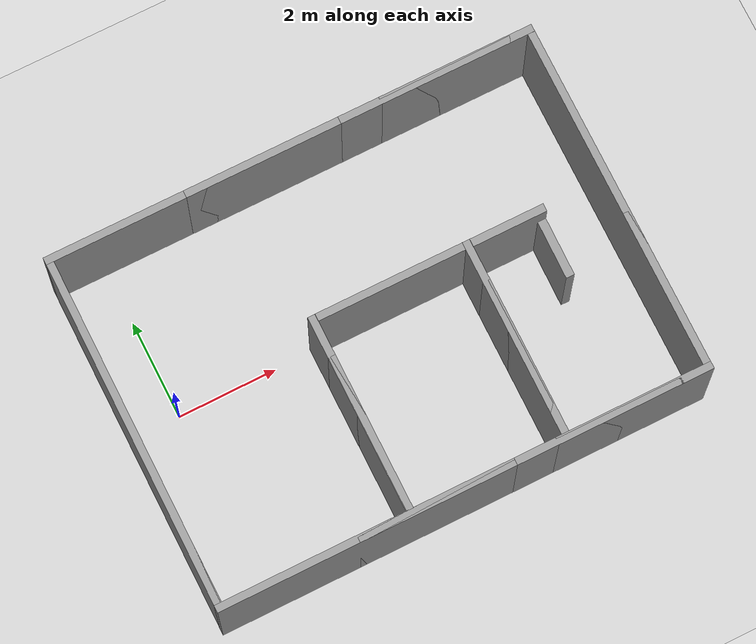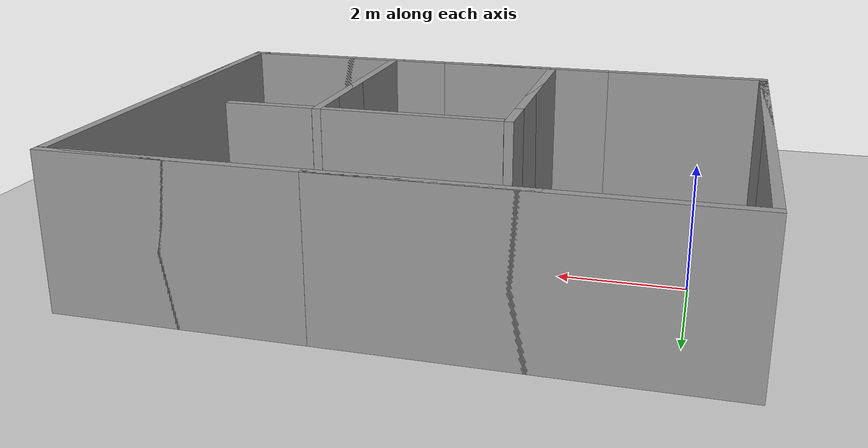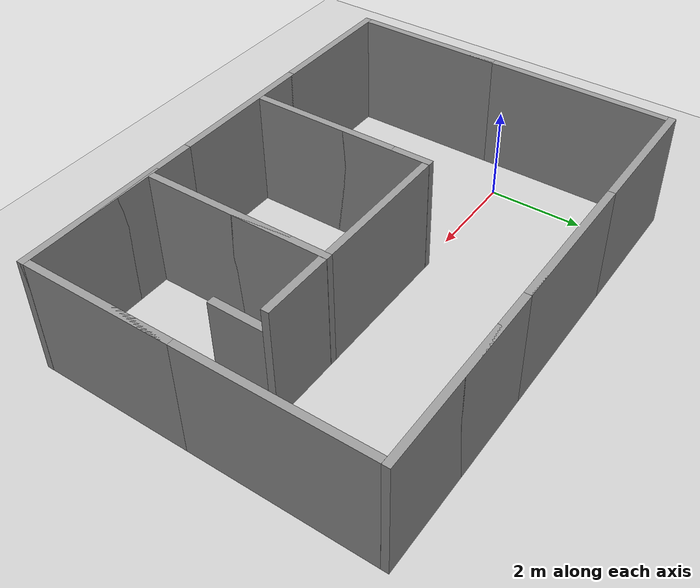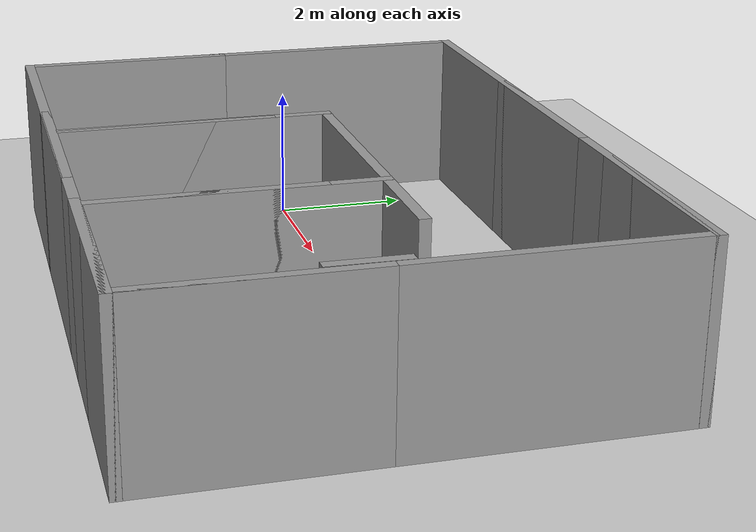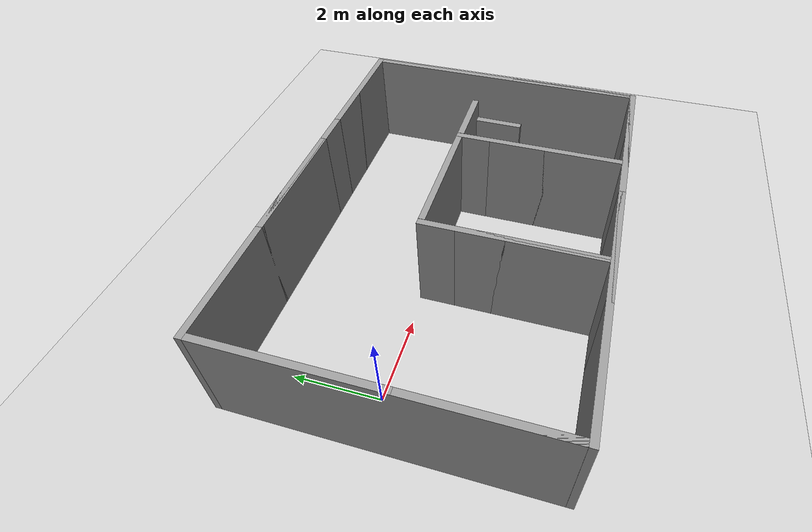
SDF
<sdf version="1.6">
 <world name="default">
  <light name="sun" type="directional">
   <pose>0 0 10 0 -0 0</pose>
   <diffuse>0.8 0.8 0.8 1</diffuse>
   <specular>0.2 0.2 0.2 1</specular>
   <attenuation>
    <range>1000</range>
    <constant>0.9</constant>
    <linear>0.01</linear>
    <quadratic>0.001</quadratic>
   </attenuation>
   <direction>-0.5 0.1 -0.9</direction>
  </light>
  <model name="ground_plane">
   <static>1</static>
   <link name="link">
    <collision name="collision">
     <geometry><plane><normal>0 0 1</normal><size>100 100</size></plane></geometry>
     <surface>
      <contact><collide_bitmask>65535</collide_bitmask></contact>
      <friction><ode><mu>100</mu><mu2>50</mu2></ode></friction>
     </surface>
    </collision>
    <visual name="visual">
     <cast_shadows>0</cast_shadows>
     <geometry><plane><normal>0 0 1</normal><size>100 100</size></plane></geometry>
     <material>
      <script><uri>file://media/materials/scripts/gazebo.material</uri><name>Gazebo/Grey</name></script>
     </material>
    </visual>
   </link>
  </model>
  <gravity>0 0 -9.8</gravity>
  <magnetic_field>6e-06 2.3e-05 -4.2e-05</magnetic_field>
  <atmosphere type="adiabatic"/>
  <physics name="default_physics" default="0" type="ode">
   <max_step_size>0.001</max_step_size>
   <real_time_factor>1</real_time_factor>
   <real_time_update_rate>1000</real_time_update_rate>
  </physics>
  <scene><ambient>0.4 0.4 0.4 1</ambient><background>0.7 0.7 0.7 1</background><shadows>1</shadows></scene>
  <audio><device>default</device></audio>
  <spherical_coordinates>
   <surface_model>EARTH_WGS84</surface_model>
   <latitude_deg>0</latitude_deg>
   <longitude_deg>0</longitude_deg>
   <elevation>0</elevation>
   <heading_deg>0</heading_deg>
  </spherical_coordinates>
  <model name="wall_6m">
   <pose>1.93944 3.15158 0 0 -0 0</pose>
   <link name="Wall_0">
    <collision name="Wall_0_Collision">
     <geometry><box><size>3.16 0.15 2.5</size></box></geometry>
     <pose>0 0 1.25 0 -0 0</pose>
    </collision>
    <visual name="Wall_0_Visual">
     <pose>0 0 1.25 0 -0 0</pose>
     <geometry><box><size>3.16 0.15 2.5</size></box></geometry>
     <material>
      <script><uri>file://media/materials/scripts/gazebo.material</uri><name>Gazebo/Grey</name></script>
      <ambient>1 1 1 1</ambient>
     </material>
     <meta><layer>0</layer></meta>
    </visual>
    <pose>1.42 0 0 0 -0 0</pose>
   </link>
   <link name="Wall_1">
    <collision name="Wall_1_Collision">
     <geometry><box><size>6 0.15 2.5</size></box></geometry>
     <pose>0 0 1.25 0 -0 0</pose>
    </collision>
    <visual name="Wall_1_Visual">
     <pose>0 0 1.25 0 -0 0</pose>
     <geometry><box><size>6 0.15 2.5</size></box></geometry>
     <material>
      <script><uri>file://media/materials/scripts/gazebo.material</uri><name>Gazebo/Grey</name></script>
      <ambient>1 1 1 1</ambient>
     </material>
     <meta><layer>0</layer></meta>
    </visual>
    <pose>0 0 0 0 -0 3.14159</pose>
   </link>
   <static>1</static>
  </model>
  <model name="wall_4m">
   <pose>6.93911 3.15249 0 0 -0 0</pose>
   <link name="Wall_0">
    <collision name="Wall_0_Collision">
     <geometry><box><size>3.16 0.15 2.5</size></box></geometry>
     <pose>0 0 1.25 0 -0 0</pose>
    </collision>
    <visual name="Wall_0_Visual">
     <pose>0 0 1.25 0 -0 0</pose>
     <geometry><box><size>3.16 0.15 2.5</size></box></geometry>
     <material>
      <script><uri>file://media/materials/scripts/gazebo.material</uri><name>Gazebo/Grey</name></script>
      <ambient>1 1 1 1</ambient>
     </material>
     <meta><layer>0</layer></meta>
    </visual>
    <pose>0.42 0 0 0 -0 0</pose>
   </link>
   <link name="Wall_1">
    <collision name="Wall_1_Collision">
     <geometry><box><size>4 0.15 2.5</size></box></geometry>
     <pose>0 0 1.25 0 -0 0</pose>
    </collision>
    <visual name="Wall_1_Visual">
     <pose>0 0 1.25 0 -0 0</pose>
     <geometry><box><size>4 0.15 2.5</size></box></geometry>
     <material>
      <script><uri>file://media/materials/scripts/gazebo.material</uri><name>Gazebo/Grey</name></script>
      <ambient>1 1 1 1</ambient>
     </material>
     <meta><layer>0</layer></meta>
    </visual>
    <pose>0 0 0 0 -0 3.14159</pose>
   </link>
   <static>1</static>
  </model>
  <model name="wall_6m_0">
   <pose>1.92237 -3.99907 0 0 -0 0</pose>
   <link name="Wall_0">
    <collision name="Wall_0_Collision">
     <geometry><box><size>3.16 0.15 2.5</size></box></geometry>
     <pose>0 0 1.25 0 -0 0</pose>
    </collision>
    <visual name="Wall_0_Visual">
     <pose>0 0 1.25 0 -0 0</pose>
     <geometry><box><size>3.16 0.15 2.5</size></box></geometry>
     <material>
      <script><uri>file://media/materials/scripts/gazebo.material</uri><name>Gazebo/Grey</name></script>
      <ambient>1 1 1 1</ambient>
     </material>
     <meta><layer>0</layer></meta>
    </visual>
    <pose>1.42 0 0 0 -0 0</pose>
   </link>
   <link name="Wall_1">
    <collision name="Wall_1_Collision">
     <geometry><box><size>6 0.15 2.5</size></box></geometry>
     <pose>0 0 1.25 0 -0 0</pose>
    </collision>
    <visual name="Wall_1_Visual">
     <pose>0 0 1.25 0 -0 0</pose>
     <geometry><box><size>6 0.15 2.5</size></box></geometry>
     <material>
      <script><uri>file://media/materials/scripts/gazebo.material</uri><name>Gazebo/Grey</name></script>
      <ambient>1 1 1 1</ambient>
     </material>
     <meta><layer>0</layer></meta>
    </visual>
    <pose>0 0 0 0 -0 3.14159</pose>
   </link>
   <static>1</static>
  </model>
  <model name="wall_7m">
   <pose>-0.994301 -0.423095 0 0 0 -1.57315</pose>
   <link name="Wall_0">
    <collision name="Wall_0_Collision">
     <geometry><box><size>3.16 0.15 2.5</size></box></geometry>
     <pose>0 0 1.25 0 -0 0</pose>
    </collision>
    <visual name="Wall_0_Visual">
     <pose>0 0 1.25 0 -0 0</pose>
     <geometry><box><size>3.16 0.15 2.5</size></box></geometry>
     <material>
      <script><uri>file://media/materials/scripts/gazebo.material</uri><name>Gazebo/Grey</name></script>
      <ambient>1 1 1 1</ambient>
     </material>
     <meta><layer>0</layer></meta>
    </visual>
    <pose>1.92 0 0 0 -0 0</pose>
   </link>
   <link name="Wall_1">
    <collision name="Wall_1_Collision">
     <geometry><box><size>7 0.15 2.5</size></box></geometry>
     <pose>0 0 1.25 0 -0 0</pose>
    </collision>
    <visual name="Wall_1_Visual">
     <pose>0 0 1.25 0 -0 0</pose>
     <geometry><box><size>7 0.15 2.5</size></box></geometry>
     <material>
      <script><uri>file://media/materials/scripts/gazebo.material</uri><name>Gazebo/Grey</name></script>
      <ambient>1 1 1 1</ambient>
     </material>
     <meta><layer>0</layer></meta>
    </visual>
    <pose>0 0 0 0 -0 3.14159</pose>
   </link>
   <static>1</static>
  </model>
  <model name="wall_7m_0">
   <pose>8.85487 -0.423126 0 0 0 -1.57337</pose>
   <link name="Wall_0">
    <collision name="Wall_0_Collision">
     <geometry><box><size>3.16 0.15 2.5</size></box></geometry>
     <pose>0 0 1.25 0 -0 0</pose>
    </collision>
    <visual name="Wall_0_Visual">
     <pose>0 0 1.25 0 -0 0</pose>
     <geometry><box><size>3.16 0.15 2.5</size></box></geometry>
     <material>
      <script><uri>file://media/materials/scripts/gazebo.material</uri><name>Gazebo/Grey</name></script>
      <ambient>1 1 1 1</ambient>
     </material>
     <meta><layer>0</layer></meta>
    </visual>
    <pose>1.92 0 0 0 -0 0</pose>
   </link>
   <link name="Wall_1">
    <collision name="Wall_1_Collision">
     <geometry><box><size>7 0.15 2.5</size></box></geometry>
     <pose>0 0 1.25 0 -0 0</pose>
    </collision>
    <visual name="Wall_1_Visual">
     <pose>0 0 1.25 0 -0 0</pose>
     <geometry><box><size>7 0.15 2.5</size></box></geometry>
     <material>
      <script><uri>file://media/materials/scripts/gazebo.material</uri><name>Gazebo/Grey</name></script>
      <ambient>1 1 1 1</ambient>
     </material>
     <meta><layer>0</layer></meta>
    </visual>
    <pose>0 0 0 0 -0 3.14159</pose>
   </link>
   <static>1</static>
  </model>
  <model name="wall_4m_0">
   <pose>6.92263 -3.99874 0 0 -0 0</pose>
   <link name="Wall_0">
    <collision name="Wall_0_Collision">
     <geometry><box><size>3.16 0.15 2.5</size></box></geometry>
     <pose>0 0 1.25 0 -0 0</pose>
    </collision>
    <visual name="Wall_0_Visual">
     <pose>0 0 1.25 0 -0 0</pose>
     <geometry><box><size>3.16 0.15 2.5</size></box></geometry>
     <material>
      <script><uri>file://media/materials/scripts/gazebo.material</uri><name>Gazebo/Grey</name></script>
      <ambient>1 1 1 1</ambient>
     </material>
     <meta><layer>0</layer></meta>
    </visual>
    <pose>0.42 0 0 0 -0 0</pose>
   </link>
   <link name="Wall_1">
    <collision name="Wall_1_Collision">
     <geometry><box><size>4 0.15 2.5</size></box></geometry>
     <pose>0 0 1.25 0 -0 0</pose>
    </collision>
    <visual name="Wall_1_Visual">
     <pose>0 0 1.25 0 -0 0</pose>
     <geometry><box><size>4 0.15 2.5</size></box></geometry>
     <material>
      <script><uri>file://media/materials/scripts/gazebo.material</uri><name>Gazebo/Grey</name></script>
      <ambient>1 1 1 1</ambient>
     </material>
     <meta><layer>0</layer></meta>
    </visual>
    <pose>0 0 0 0 -0 3.14159</pose>
   </link>
   <static>1</static>
  </model>
  <model name="wall_0">
   <pose>4.40755 -0.009063 0 0 -0 0</pose>
   <link name="Wall_0">
    <collision name="Wall_0_Collision">
     <geometry><box><size>3 0.15 2.5</size></box></geometry>
     <pose>0 0 1.25 0 -0 0</pose>
    </collision>
    <visual name="Wall_0_Visual">
     <pose>0 0 1.25 0 -0 0</pose>
     <geometry><box><size>3 0.15 2.5</size></box></geometry>
     <material>
      <script><uri>file://media/materials/scripts/gazebo.material</uri><name>Gazebo/Grey</name></script>
      <ambient>1 1 1 1</ambient>
     </material>
     <meta><layer>0</layer></meta>
    </visual>
    <pose>0 0 0 0 -0 3.14159</pose>
   </link>
   <static>1</static>
  </model>
  <model name="wall_4m_1">
   <pose>5.96977 -1.93284 0 0 0 -1.57449</pose>
   <link name="Wall_0">
    <collision name="Wall_0_Collision">
     <geometry><box><size>3.16 0.15 2.5</size></box></geometry>
     <pose>0 0 1.25 0 -0 0</pose>
    </collision>
    <visual name="Wall_0_Visual">
     <pose>0 0 1.25 0 -0 0</pose>
     <geometry><box><size>3.16 0.15 2.5</size></box></geometry>
     <material>
      <script><uri>file://media/materials/scripts/gazebo.material</uri><name>Gazebo/Grey</name></script>
      <ambient>1 1 1 1</ambient>
     </material>
     <meta><layer>0</layer></meta>
    </visual>
    <pose>0.42 0 0 0 -0 0</pose>
   </link>
   <link name="Wall_1">
    <collision name="Wall_1_Collision">
     <geometry><box><size>4 0.15 2.5</size></box></geometry>
     <pose>0 0 1.25 0 -0 0</pose>
    </collision>
    <visual name="Wall_1_Visual">
     <pose>0 0 1.25 0 -0 0</pose>
     <geometry><box><size>4 0.15 2.5</size></box></geometry>
     <material>
      <script><uri>file://media/materials/scripts/gazebo.material</uri><name>Gazebo/Grey</name></script>
      <ambient>1 1 1 1</ambient>
     </material>
     <meta><layer>0</layer></meta>
    </visual>
    <pose>0 0 0 0 -0 3.14159</pose>
   </link>
   <static>1</static>
  </model>
  <model name="wall_4m_2">
   <pose>2.82571 -1.9342 0 0 0 -1.57227</pose>
   <link name="Wall_0">
    <collision name="Wall_0_Collision">
     <geometry><box><size>3.16 0.15 2.5</size></box></geometry>
     <pose>0 0 1.25 0 -0 0</pose>
    </collision>
    <visual name="Wall_0_Visual">
     <pose>0 0 1.25 0 -0 0</pose>
     <geometry><box><size>3.16 0.15 2.5</size></box></geometry>
     <material>
      <script><uri>file://media/materials/scripts/gazebo.material</uri><name>Gazebo/Grey</name></script>
      <ambient>1 1 1 1</ambient>
     </material>
     <meta><layer>0</layer></meta>
    </visual>
    <pose>0.42 0 0 0 -0 0</pose>
   </link>
   <link name="Wall_1">
    <collision name="Wall_1_Collision">
     <geometry><box><size>4 0.15 2.5</size></box></geometry>
     <pose>0 0 1.25 0 -0 0</pose>
    </collision>
    <visual name="Wall_1_Visual">
     <pose>0 0 1.25 0 -0 0</pose>
     <geometry><box><size>4 0.15 2.5</size></box></geometry>
     <material>
      <script><uri>file://media/materials/scripts/gazebo.material</uri><name>Gazebo/Grey</name></script>
      <ambient>1 1 1 1</ambient>
     </material>
     <meta><layer>0</layer></meta>
    </visual>
    <pose>0 0 0 0 -0 3.14159</pose>
   </link>
   <static>1</static>
  </model>
  <model name="door">
   <link name="Door_0">
    <pose>0.307791 0.000526 0 0 -0 0</pose>
    <inertial>
     <inertia><ixx>0</ixx><ixy>0</ixy><ixz>0</ixz><iyy>0</iyy><iyz>0</iyz><izz>0</izz></inertia>
     <mass>0</mass>
    </inertial>
    <visual name="Door_0_Visual">
     <pose>0 0 1 0 -0 0</pose>
     <geometry><box><size>1.18539 0.17 2</size></box></geometry>
     <material>
      <script><uri>file://media/materials/scripts/gazebo.material</uri><name>Gazebo/Grey</name></script>
     </material>
    </visual>
    <collision name="Door_0_Collision">
     <pose>0 0 1 0 -0 0</pose>
     <geometry><box><size>1.18539 0.17 2</size></box></geometry>
     <surface>
      <friction>
       <ode><mu>1</mu><mu2>1</mu2><fdir1>0 0 0</fdir1><slip1>0</slip1><slip2>0</slip2></ode>
       <torsional>
        <coefficient>1</coefficient>
        <patch_radius>0</patch_radius>
        <surface_radius>0</surface_radius>
        <use_patch_radius>1</use_patch_radius>
        <ode><slip>0</slip></ode>
       </torsional>
      </friction>
      <bounce><restitution_coefficient>0</restitution_coefficient><threshold>1e+06</threshold></bounce>
      <contact>
       <collide_without_contact>0</collide_without_contact>
       <collide_without_contact_bitmask>1</collide_without_contact_bitmask>
       <collide_bitmask>1</collide_bitmask>
       <ode>
        <soft_cfm>0</soft_cfm>
        <soft_erp>0.2</soft_erp>
        <kp>1e+13</kp>
        <kd>1</kd>
        <max_vel>0.01</max_vel>
        <min_depth>0</min_depth>
       </ode>
       <bullet>
        <split_impulse>1</split_impulse>
        <split_impulse_penetration_threshold>-0.01</split_impulse_penetration_threshold>
        <soft_cfm>0</soft_cfm>
        <soft_erp>0.2</soft_erp>
        <kp>1e+13</kp>
        <kd>1</kd>
       </bullet>
      </contact>
     </surface>
    </collision>
   </link>
   <static>1</static>
   <pose>7.47138 -0.37692 0 0 0 -1.58374</pose>
  </model>
  <model name="wall">
   <link name="Wall_0">
    <pose>-0.925523 -0.044595 0 0 -0 3.14159</pose>
    <inertial>
     <inertia><ixx>0</ixx><ixy>0</ixy><ixz>0</ixz><iyy>0</iyy><iyz>0</iyz><izz>0</izz></inertia>
     <mass>0</mass>
    </inertial>
    <visual name="Wall_0_Visual">
     <pose>0 0 1.25 0 -0 0</pose>
     <geometry><box><size>1.50859 0.160067 2.5</size></box></geometry>
     <material>
      <script><uri>file://media/materials/scripts/gazebo.material</uri><name>Gazebo/Grey</name></script>
      <ambient>1 1 1 1</ambient>
     </material>
     <meta><layer>0</layer></meta>
    </visual>
    <collision name="Wall_0_Collision">
     <pose>0 0 1.25 0 -0 0</pose>
     <geometry><box><size>1.50859 0.160067 2.5</size></box></geometry>
     <surface>
      <friction>
       <ode><mu>1</mu><mu2>1</mu2><fdir1>0 0 0</fdir1><slip1>0</slip1><slip2>0</slip2></ode>
       <torsional>
        <coefficient>1</coefficient>
        <patch_radius>0</patch_radius>
        <surface_radius>0</surface_radius>
        <use_patch_radius>1</use_patch_radius>
        <ode><slip>0</slip></ode>
       </torsional>
      </friction>
      <bounce><restitution_coefficient>0</restitution_coefficient><threshold>1e+06</threshold></bounce>
      <contact>
       <collide_without_contact>0</collide_without_contact>
       <collide_without_contact_bitmask>1</collide_without_contact_bitmask>
       <collide_bitmask>1</collide_bitmask>
       <ode>
        <soft_cfm>0</soft_cfm>
        <soft_erp>0.2</soft_erp>
        <kp>1e+13</kp>
        <kd>1</kd>
        <max_vel>0.01</max_vel>
        <min_depth>0</min_depth>
       </ode>
       <bullet>
        <split_impulse>1</split_impulse>
        <split_impulse_penetration_threshold>-0.01</split_impulse_penetration_threshold>
        <soft_cfm>0</soft_cfm>
        <soft_erp>0.2</soft_erp>
        <kp>1e+13</kp>
        <kd>1</kd>
       </bullet>
      </contact>
     </surface>
    </collision>
   </link>
   <static>1</static>
   <pose>7.73419 0.029565 0 0 -0 0</pose>
  </model>
 </world>
</sdf>
